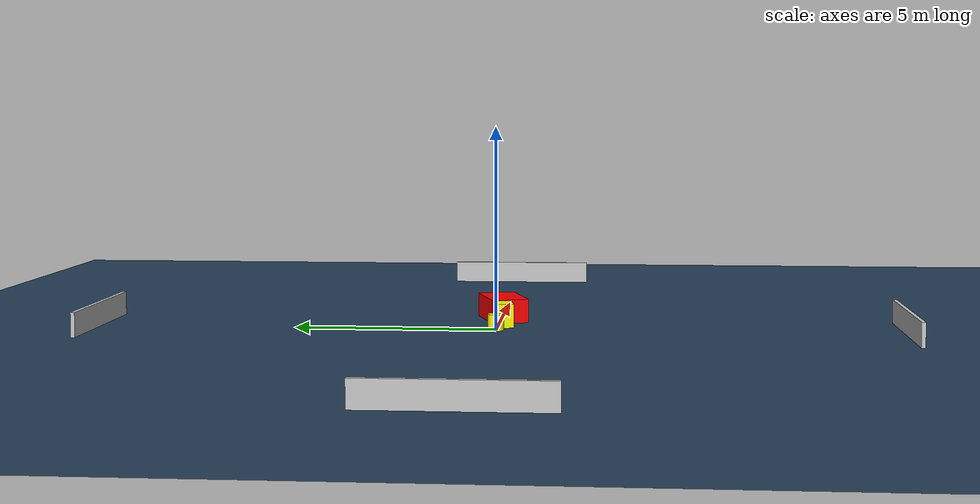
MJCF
<?xml version="1.0" ?>
<mujoco model="generated_environment">
  <option timestep="0.01" integrator="RK4" cone="elliptic"/>
  <default>
    <geom density="1"/>
  </default>
  <asset>
    <texture builtin="gradient" height="3072" name="skybox" rgb1="0.3 0.5 0.7" rgb2="0 0 0" type="skybox" width="512"/>
    <texture builtin="checker" height="300" name="groundplane" rgb1="0.2 0.3 0.4" rgb2="0.1 0.2 0.3" type="2d" width="300"/>
    <material name="groundplane" reflectance="0.2" texrepeat="5 5" texture="groundplane"/>
  </asset>
  <worldbody>
    <light dir="0 0 -1" directional="true" pos="0 0 1.5"/>
    <geom condim="3" friction="0.5 0.005 0.001" material="groundplane" name="floor" pos="0 0 0" size="0 0 0.05" type="plane"/>
    <body name="walls">
      <geom name="wall_1" condim="4" pos="-10.0 0.0 0.3" rgba="0.800000011920929 0.800000011920929 0.800000011920929 1.0" size="0.05 2.0 0.3" type="box"/>
      <geom name="wall_2" condim="4" pos="10.0 0.0 0.3" rgba="0.800000011920929 0.800000011920929 0.800000011920929 1.0" size="0.05 2.0 0.3" type="box"/>
      <geom name="wall_3" condim="4" pos="0.0 -10.0 0.3" rgba="0.800000011920929 0.800000011920929 0.800000011920929 1.0" size="2.0 0.05 0.3" type="box"/>
      <geom name="wall_4" condim="4" pos="0.0 10.0 0.3" rgba="0.800000011920929 0.800000011920929 0.800000011920929 1.0" size="2.0 0.05 0.3" type="box"/>
    </body>
    <body name="robot">
      <joint name="joint_x" type="slide" pos="0 0 0" axis="1 0 0"/>
      <joint name="joint_y" type="slide" pos="0 0 0" axis="0 1 0"/>
      <geom name="robot" type="cylinder" pos="0.0 0.0 0.2" size="0.2 0.2 0.0" mass="5.0" friction="1.0 0.005 0.0001" condim="4" rgba="1.0 1.0 0.0 1.0"/>
    </body>
    <body name="obstacle_1_movable">
      <geom name="obstacle_1_movable" condim="4" pos="0.6366828082028473 -0.1496141745358853 0.3" euler="0 0 101.88908792470527" friction="0.0 0.005 0.001" rgba="1.0 1.0 0.0 1.0" size="0.21106495322526148 0.31754252238835134 0.3" type="box" mass="0.1"/>
      <joint type="free"/>
    </body>
    <body name="obstacle_2_static">
      <geom name="obstacle_2_static" condim="4" pos="1.8943790267207101 -0.04298994109465576 0.3" euler="0 0 287.9797596044245" friction="0.0 0.005 0.001" rgba="1.0 0.0 0.0 1.0" size="0.4753645751841854 0.7703996979746721 0.3" type="box"/>
    </body>
  </worldbody>
  <actuator>
    <motor name="actuator_x" joint="joint_x" gear="1" ctrlrange="-1 1"/>
    <motor name="actuator_y" joint="joint_y" gear="1" ctrlrange="-1 1"/>
  </actuator>
</mujoco>
